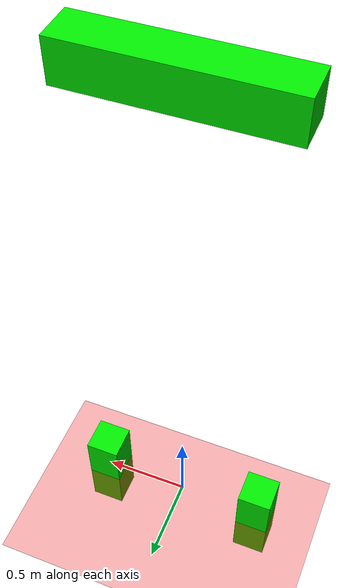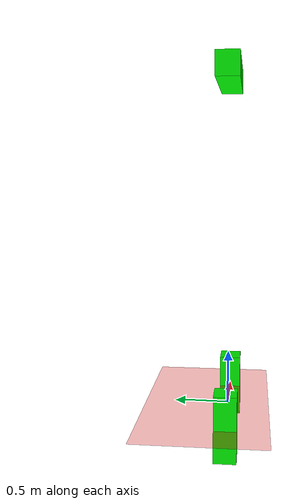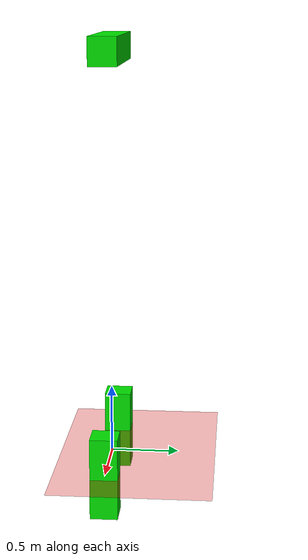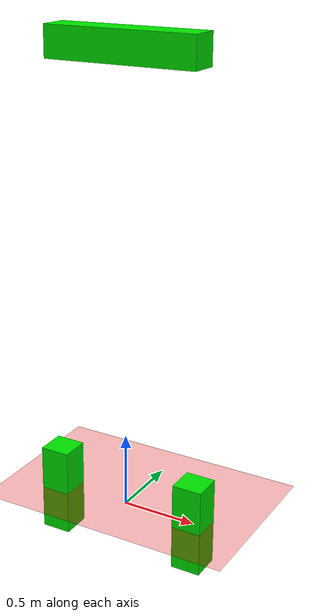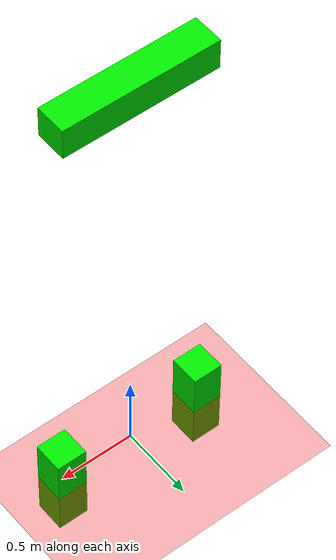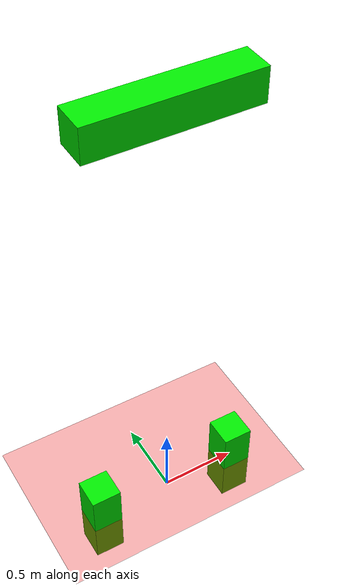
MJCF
<mujoco>
   <worldbody>
      <light diffuse=".5 .5 .5" pos="0 0 3" dir="0 0 -1"/>
      <geom type="plane" size="3 3 0.1" rgba=".9 0 0 1"/>
      <body pos="0.5 0 0">
         <joint type="free"/>
         <geom type="box" size=".1 .1 .3" rgba="0 .9 0 1"/>
      </body>
	  <body pos="-0.5 0 0">
         <joint type="free"/>
         <geom type="box" size=".1 .1 .3" rgba="0 .9 0 1"/>
      </body>
	  <body pos="0 0 3">
         <joint type="free"/>
         <geom type="box" size=".5 .1 .1" rgba="0 .9 0 1"/>
      </body>
   </worldbody>
</mujoco>
